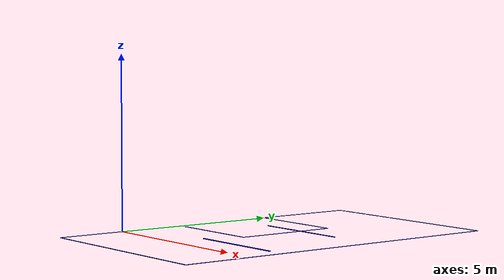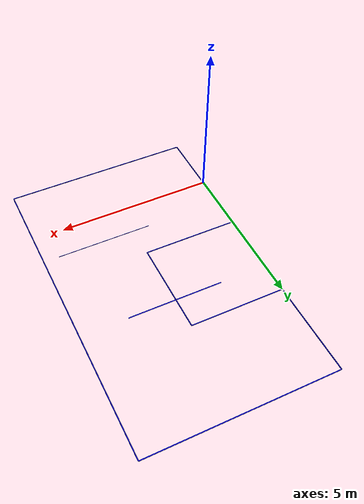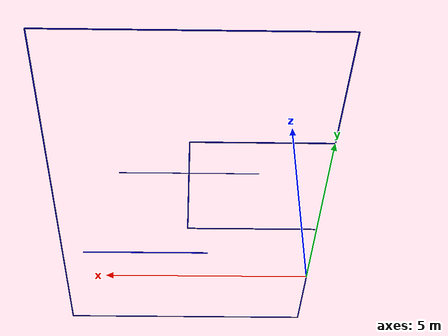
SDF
<?xml version="1.0" ?>
<sdf version="1.6">
  <model name="line_track">
    <static>true</static>
    <link name="track_link">
      <!-- Main outer loop -->
      <visual name="base_horizontal">
        <pose>3 -2 0.01 0 0 0</pose>
        <geometry>
          <box><size>6 0.025 0.01</size></box> <!-- 6m long base -->
        </geometry>
        <material>
          <ambient>0 0 1 1</ambient>
          <diffuse>0 0 1 1</diffuse>
          <specular>0 0 0 1</specular>
        </material>
      </visual>

      <visual name="right_vertical">
        <pose>6 3 0.01 0 0 1.5708</pose>
        <geometry>
          <box><size>10 0.025 0.01</size></box> <!-- 10m tall right side -->
        </geometry>
        <material>
          <ambient>0 0 1 1</ambient>
          <diffuse>0 0 1 1</diffuse>
          <specular>0 0 0 1</specular>
        </material>
      </visual>

      <visual name="top_horizontal">
        <pose>3 8 0.01 0 0 0</pose>
        <geometry>
          <box><size>6 0.025 0.01</size></box> <!-- 6m top section -->
        </geometry>
        <material>
          <ambient>0 0 1 1</ambient>
          <diffuse>0 0 1 1</diffuse>
          <specular>0 0 0 1</specular>
        </material>
      </visual>

      <!-- New inner complexity -->
      <visual name="inner_vertical1">
        <pose>0 6.5 0.01 0 0 1.5708</pose>
        <geometry>
          <box><size>3 0.025 0.01</size></box> <!-- First inner vertical -->
        </geometry>
        <material>
          <ambient>0 0 1 1</ambient>
          <diffuse>0 0 1 1</diffuse>
          <specular>0 0 0 1</specular>
        </material>
      </visual>

      <visual name="inner_horizontal">
        <pose>1.5 5 0.01 0 0 0</pose>
        <geometry>
          <box><size>3 0.025 0.01</size></box> <!-- Inner cross connector -->
        </geometry>
        <material>
          <ambient>0 0 1 1</ambient>
          <diffuse>0 0 1 1</diffuse>
          <specular>0 0 0 1</specular>
        </material>
      </visual>

      <visual name="inner_vertical2">
        <pose>3 3.5 0.01 0 0 1.5708</pose>
        <geometry>
          <box><size>3 0.025 0.01</size></box> <!-- Second inner vertical -->
        </geometry>
        <material>
          <ambient>0 0 1 1</ambient>
          <diffuse>0 0 1 1</diffuse>
          <specular>0 0 0 1</specular>
        </material>
      </visual>

      <visual name="lower_horizontal">
        <pose>1.5 2 0.01 0 0 0</pose>
        <geometry>
          <box><size>3 0.025 0.01</size></box> <!-- Lower return path -->
        </geometry>
        <material>
          <ambient>0 0 1 1</ambient>
          <diffuse>0 0 1 1</diffuse>
          <specular>0 0 0 1</specular>
        </material>
      </visual>

      <visual name="final_vertical">
        <pose>0 0 0.01 0 0 1.5708</pose>
        <geometry>
          <box><size>4 0.025 0.01</size></box> <!-- Final vertical closure -->
        </geometry>
        <material>
          <ambient>0 0 1 1</ambient>
          <diffuse>0 0 1 1</diffuse>
          <specular>0 0 0 1</specular>
        </material>
      </visual>

      <!-- Additional decorative elements -->
      <visual name="diagonal1">
        <pose>4 1 0.01 0.7854 0 0</pose>
        <geometry>
          <box><size>3 0.025 0.01</size></box> <!-- 45° diagonal segment -->
        </geometry>
        <material>
          <ambient>0 0 1 1</ambient>
          <diffuse>0 0 1 1</diffuse>
          <specular>0 0 0 1</specular>
        </material>
      </visual>

      <visual name="diagonal2">
        <pose>3 4 0.01 -0.7854 0 0</pose>
        <geometry>
          <box><size>3 0.025 0.01</size></box> <!-- -45° diagonal segment -->
        </geometry>
        <material>
          <ambient>0 0 1 1</ambient>
          <diffuse>0 0 1 1</diffuse>
          <specular>0 0 0 1</specular>
        </material>
      </visual>
    </link>
  </model>
</sdf>
